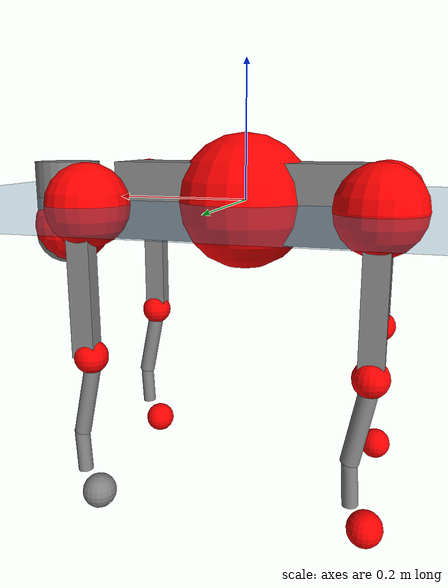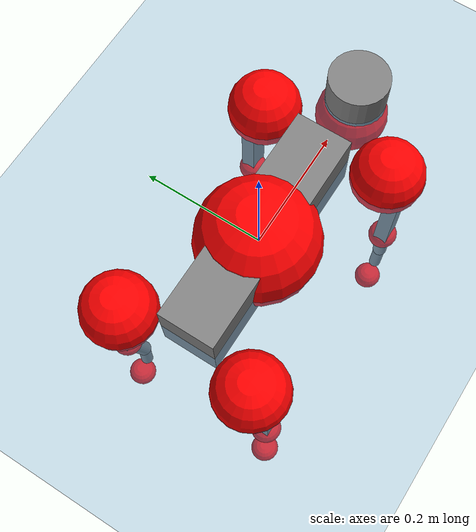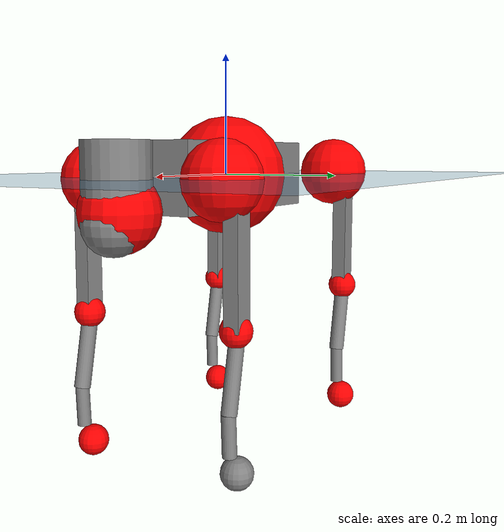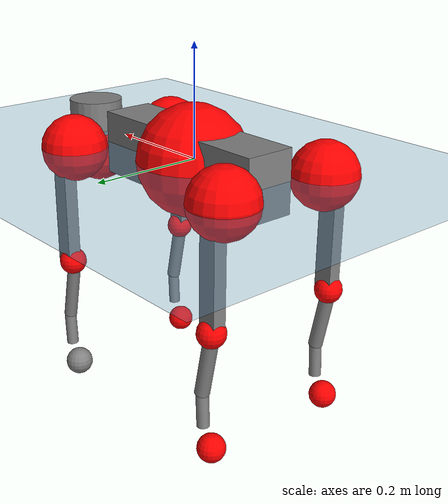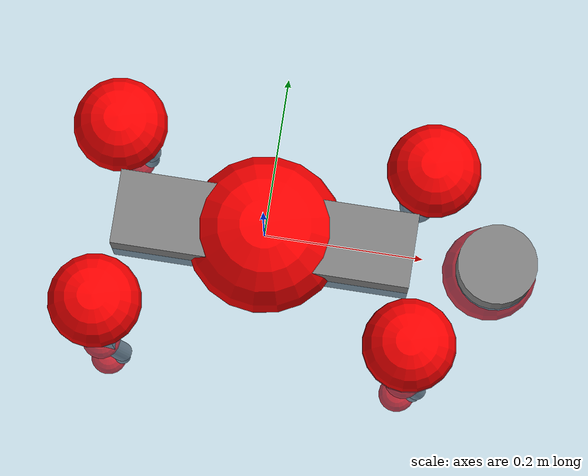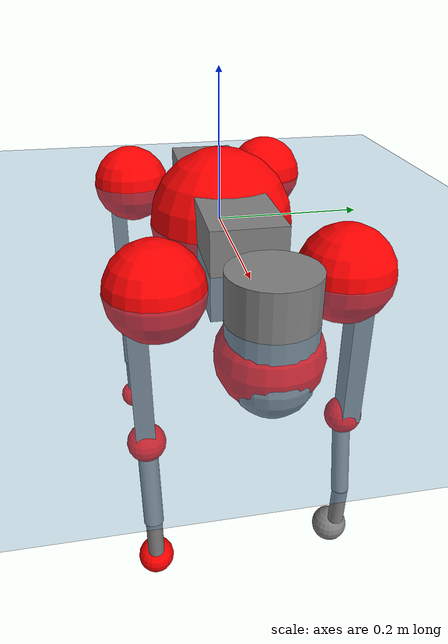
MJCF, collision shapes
<mujoco model="go2">
  <compiler angle="radian" assetdir="assets" balanceinertia="true" inertiafromgeom="false"/>

  <option timestep="0.005" density="1.2" viscosity="2e-05"/>

  <size nkey="1"/>

  <visual>
    <quality shadowsize="8192"/>
    <map shadowclip="0.5"/>
  </visual>

  <default>
    <default class="/">
      <geom contype="0" conaffinity="0" group="1" solref="-1000 -80"/>
      <site size="0.01 0.005 0.005" group="5"/>
      <general forcelimited="true" biastype="affine" gainprm="20" biasprm="0 -20 -0.5"/>
      <default class="go2">
        <joint armature="0.01" damping="0.01" frictionloss="0.2"/>
        <geom condim="1" margin="0.001"/>
        <default class="visual">
          <geom type="mesh" group="2"/>
        </default>
        <default class="collision">
          <geom group="3"/>
          <default class="foot">
            <geom size="0.022 0 0" condim="6" priority="1" friction="0.8 0.02 0.01" solimp="0.015 1 0.022"/>
          </default>
        </default>
        <default class="reward_collision_sphere">
          <geom group="5" rgba="1 0 0 1"/>
        </default>
      </default>
    </default>
  </default>

  <asset>
    <texture type="skybox" colorspace="auto" name="//unnamed_texture_0" builtin="gradient" rgb1="0.95 0.95 0.95" rgb2="0.95 0.95 0.95" width="100" height="600"/>
    <texture type="2d" colorspace="auto" name="texplane" builtin="checker" rgb1="0.345 0.575 0.748" rgb2="0.345 0.575 0.748" markrgb="1 1 1" width="512" height="512"/>
    <material name="MatPlane" class="/" texture="texplane" texuniform="true" texrepeat="2 2" specular="0.9"/>
    <material name="metal" class="/" rgba="0.9 0.95 0.95 1"/>
    <material name="black" class="/" rgba="0 0 0 1"/>
    <material name="white" class="/"/>
    <material name="gray" class="/" rgba="0.671705 0.692426 0.77427 1"/>
    <mesh name="base_0" class="/" file="base_0.obj"/>
    <mesh name="base_1" class="/" file="base_1.obj"/>
    <mesh name="base_2" class="/" file="base_2.obj"/>
    <mesh name="base_3" class="/" file="base_3.obj"/>
    <mesh name="base_4" class="/" file="base_4.obj"/>
    <mesh name="hip_0" class="/" file="hip_0.obj"/>
    <mesh name="hip_1" class="/" file="hip_1.obj"/>
    <mesh name="thigh_0" class="/" file="thigh_0.obj"/>
    <mesh name="thigh_1" class="/" file="thigh_1.obj"/>
    <mesh name="thigh_mirror_0" class="/" file="thigh_mirror_0.obj"/>
    <mesh name="thigh_mirror_1" class="/" file="thigh_mirror_1.obj"/>
    <mesh name="calf_0" class="/" file="calf_0.obj"/>
    <mesh name="calf_1" class="/" file="calf_1.obj"/>
    <mesh name="calf_mirror_0" class="/" file="calf_mirror_0.obj"/>
    <mesh name="calf_mirror_1" class="/" file="calf_mirror_1.obj"/>
    <mesh name="foot" class="/" file="foot.obj"/>
  </asset>

  <worldbody>
    <geom name="floor" class="/" size="100 100 0.125" type="plane" group="0" material="MatPlane"/>
    <light name="toplight_shadow" class="/" pos="0 0 5" dir="0.0990148 0.0990148 -0.990148" type="directional" ambient="0.04 0.04 0.04" diffuse="0.55 0.55 0.55" specular="0.12 0.12 0.12"/>
    <light name="toplight_fill" class="/" pos="0 0 5" dir="0.0990148 0.0990148 -0.990148" type="directional" castshadow="false" ambient="0.04 0.04 0.04" diffuse="0.3 0.3 0.3" specular="0.08 0.08 0.08"/>
    <body name="trunk" childclass="go2" pos="0.000245501 0.00201447 -0.00152734" quat="1 -2.68849e-05 9.73089e-05 -0.000234325">
      <inertial pos="0.0200749 0.00105139 -0.00457837" quat="0.000797439 0.717973 -0.00300645 0.696064" mass="7.00361" diaginertia="0.117699 0.0805368 0.0237473"/>
      <joint name="//unnamed_joint_0" type="free" armature="0" damping="0" frictionloss="0"/>
      <geom name="//unnamed_geom_1" class="visual" material="black" mesh="base_0"/>
      <geom name="//unnamed_geom_2" class="visual" material="black" mesh="base_1"/>
      <geom name="//unnamed_geom_3" class="visual" material="black" mesh="base_2"/>
      <geom name="//unnamed_geom_4" class="visual" material="white" mesh="base_3"/>
      <geom name="//unnamed_geom_5" class="visual" material="gray" mesh="base_4"/>
      <geom name="trunk_1" class="collision" size="0.187296 0.0465502 0.0567564" type="box"/>
      <geom name="trunk_2" class="collision" size="0.0497863 0.0448077" pos="0.291954 0 0.0100101" type="cylinder"/>
      <geom name="trunk_3" class="collision" size="0.0467991" pos="0.300149 0 -0.0600604"/>
      <geom name="//unnamed_geom_9" class="reward_collision_sphere" size="0.0995726"/>
      <geom name="//unnamed_geom_10" class="reward_collision_sphere" size="0.0597436" pos="0.286832 0 -0.0450453"/>
      <site name="imu" pos="-0.0203909 0.0236742 0.0305002" size="0.00995726"/>
      <camera name="track" pos="0 -1.92354 0" quat="0.707107 0.707107 0 0" mode="trackcom"/>
      <camera name="ego_camera" pos="0.319613 0 0.0450453" quat="-0.5 -0.5 0.5 0.5"/>
      <body name="FL_hip" pos="0.19789 0.0449482 -0.00131274" quat="0.999998 0.000613911 0.00180799 -0.000944406">
        <inertial pos="-0.00698954 0.0030368 -0.00275837" quat="0.497132 0.497767 0.505347 0.499712" mass="0.643049" diaginertia="0.000960322 0.000466704 0.00047184"/>
        <joint name="FL_hip_joint" pos="0 0 0" axis="0.999998 0.0016925 -0.000906291" range="-1.10486 1.06079" armature="0.00956808" damping="0.0257359" frictionloss="0.178209"/>
        <geom name="//unnamed_geom_11" class="visual" material="metal" mesh="hip_0"/>
        <geom name="//unnamed_geom_12" class="visual" material="gray" mesh="hip_1"/>
        <geom name="//unnamed_geom_13" class="collision" size="0.0458034 0.0199145" pos="0 0.0769417 0" quat="0.707107 0.707107 0 0" type="cylinder"/>
        <geom name="//unnamed_geom_14" class="reward_collision_sphere" size="0.0597436" pos="0 0.067324 0"/>
        <body name="FL_thigh" pos="0.000674951 0.0904714 -0.00153628" quat="1 -1.74906e-06 2.32518e-05 2.61075e-05">
          <inertial pos="-0.00348171 -0.0183588 -0.0279689" quat="0.835321 0.0905119 -0.0217169 0.541826" mass="1.11036" diaginertia="0.00693891 0.00475842 0.000914528"/>
          <joint name="FL_thigh_joint" pos="0 0 0" axis="0.0199392 0.999701 -0.0141816" stiffness="0.00770613" range="-1.58031 3.40369" armature="0.00933369" damping="0.0320215" frictionloss="0.200468"/>
          <geom name="//unnamed_geom_15" class="visual" material="metal" mesh="thigh_0"/>
          <geom name="//unnamed_geom_16" class="visual" material="gray" mesh="thigh_1"/>
          <geom name="//unnamed_geom_17" class="collision" size="0.106045 0.0121976 0.0169273" pos="0 0 -0.106607" quat="0.707107 0 0.707107 0" type="box"/>
          <body name="FL_calf" pos="-0.00494243 -0.00359827 -0.213482" quat="1 -0.000121339 -0.000191842 -2.77441e-05">
            <inertial pos="0.0037872 -0.00172309 -0.141352" quat="0.709901 0.000519416 -0.00347985 0.704293" mass="0.22808" diaginertia="0.00166957 0.00115831 5.28575e-05"/>
            <joint name="FL_calf_joint" pos="0 0 0" axis="0.00508552 0.999967 -0.00629536" stiffness="0.0261276" range="-2.7196 -0.793127" armature="0.0102413" damping="0.00229649" frictionloss="0.181479"/>
            <geom name="//unnamed_geom_18" class="visual" material="gray" mesh="calf_0"/>
            <geom name="//unnamed_geom_19" class="visual" material="black" mesh="calf_1"/>
            <geom name="FL_calf0" class="collision" size="0.0119487 0.0597436" pos="0.0081952 0 -0.0600604" quat="0.994493 0 -0.104807 0" type="cylinder"/>
            <geom name="//unnamed_geom_21" class="collision" size="0.010953 0.0323611" pos="0.020488 0 -0.148149" quat="0.999688 0 0.0249974 0" type="cylinder"/>
            <geom name="//unnamed_geom_22" class="visual" pos="0 0 -0.213215" quat="1 0 0 0" material="black" mesh="foot"/>
            <geom name="FL_foot" class="foot" size="0.0253629" pos="-0.0020488 0 -0.213215"/>
            <geom name="//unnamed_geom_24" class="reward_collision_sphere" size="0.0248931"/>
            <geom name="//unnamed_geom_25" class="reward_collision_sphere" size="0.0248931" pos="-0.0020488 0 -0.213215"/>
            <site name="FL_foot" class="foot" pos="-0.0020488 0 -0.213215" size="0.00995726"/>
          </body>
        </body>
      </body>
      <body name="FR_hip" pos="0.199571 -0.0431448 -0.00339385" quat="1 -6.6883e-05 8.98743e-05 1.68554e-06">
        <inertial pos="-0.00809409 -0.00190496 -0.000179665" quat="0.487874 0.504548 0.499308 0.508037" mass="0.644508" diaginertia="0.000937487 0.000481683 0.000475146"/>
        <joint name="FR_hip_joint" pos="0 0 0" axis="1 0.000604338 -0.000255289" stiffness="0.0134752" range="-1.05756 1.06591" armature="0.00992311" damping="0.00578669" frictionloss="0.223604"/>
        <geom name="//unnamed_geom_26" class="visual" pos="0 -3.41814e-10 -1.46611e-08" quat="4.63268e-05 1 0 0" material="metal" mesh="hip_0"/>
        <geom name="//unnamed_geom_27" class="visual" pos="0 -5.54122e-10 3.62625e-08" quat="4.63268e-05 1 0 0" material="gray" mesh="hip_1"/>
        <geom name="//unnamed_geom_28" class="collision" size="0.0458034 0.0199145" pos="0 -0.0769417 0" quat="0.707107 0.707107 0 0" type="cylinder"/>
        <geom name="//unnamed_geom_29" class="reward_collision_sphere" size="0.0597436" pos="0 -0.067324 0"/>
        <body name="FR_thigh" pos="0.00147238 -0.0919356 0.00140905" quat="0.999999 0.00104926 -0.000711119 0.000347375">
          <inertial pos="-0.00425738 0.0218834 -0.0291384" quat="0.532396 -0.0122298 0.0917901 0.841415" mass="1.12448" diaginertia="0.00632124 0.00460585 0.000846551"/>
          <joint name="FR_thigh_joint" pos="0 0 0" axis="-0.000733409 -0.999999 0.0012308" range="-3.42402 1.54851" armature="0.010497" damping="0.0167219" frictionloss="0.22458"/>
          <geom name="//unnamed_geom_30" class="visual" material="metal" mesh="thigh_mirror_0"/>
          <geom name="//unnamed_geom_31" class="visual" material="gray" mesh="thigh_mirror_1"/>
          <geom name="//unnamed_geom_32" class="collision" size="0.106045 0.0121976 0.0169273" pos="0 0 -0.106607" quat="0.707107 0 0.707107 0" type="box"/>
          <body name="FR_calf" pos="0.00122741 0.00108978 -0.213121" quat="1 -8.63553e-05 -0.000121929 3.72982e-05">
            <inertial pos="0.00889878 9.56197e-05 -0.146571" quat="0.699996 -0.00457492 0.00549331 0.714111" mass="0.256189" diaginertia="0.00183465 0.00120758 5.86996e-05"/>
            <joint name="FR_calf_joint" pos="0 0 0" axis="-0.0121654 -0.999906 0.0063746" range="0.826474 2.69127" armature="0.00958897" damping="0.0077326" frictionloss="0.201645"/>
            <geom name="//unnamed_geom_33" class="visual" material="gray" mesh="calf_mirror_0"/>
            <geom name="//unnamed_geom_34" class="visual" material="black" mesh="calf_mirror_1"/>
            <geom name="FR_calf0" class="collision" size="0.0129444 0.0597436" pos="0.010244 0 -0.0600604" quat="0.995004 0 -0.0998334 0" type="cylinder"/>
            <geom name="//unnamed_geom_36" class="collision" size="0.010953 0.0323611" pos="0.020488 0 -0.148149" quat="0.999688 0 0.0249974 0" type="cylinder"/>
            <geom name="//unnamed_geom_37" class="visual" pos="0 0 -0.213215" quat="1 0 0 0" material="black" mesh="foot"/>
            <geom name="FR_foot" class="foot" size="0.0194628" pos="-0.0020488 0 -0.213215"/>
            <geom name="//unnamed_geom_39" class="reward_collision_sphere" size="0.0248931"/>
            <geom name="//unnamed_geom_40" class="reward_collision_sphere" size="0.0248931" pos="-0.0020488 0 -0.213215"/>
            <site name="FR_foot" class="foot" pos="-0.0020488 0 -0.213215" size="0.00995726"/>
          </body>
        </body>
      </body>
      <body name="RL_hip" pos="-0.20099 0.0425685 0.0037528" quat="1 4.76934e-05 6.9817e-05 0.000196732">
        <inertial pos="0.00479189 0.000603144 0.00354182" quat="0.497926 0.497686 0.500411 0.503952" mass="0.631926" diaginertia="0.000950575 0.000478739 0.000478142"/>
        <joint name="RL_hip_joint" pos="0 0 0" axis="-0.99998 -0.00616075 0.00132697" stiffness="0.0132375" range="-1.1339 0.99471" armature="0.0101499" damping="0.00919448" frictionloss="0.172829"/>
        <geom name="//unnamed_geom_41" class="visual" pos="-2.03782e-10 0 -3.99459e-08" quat="4.63268e-05 0 1 0" material="metal" mesh="hip_0"/>
        <geom name="//unnamed_geom_42" class="visual" pos="-3.30355e-10 0 -3.54264e-08" quat="4.63268e-05 0 1 0" material="gray" mesh="hip_1"/>
        <geom name="//unnamed_geom_43" class="collision" size="0.0458034 0.0199145" pos="0 0.0769417 0" quat="0.707107 0.707107 0 0" type="cylinder"/>
        <geom name="//unnamed_geom_44" class="reward_collision_sphere" size="0.0597436" pos="0 0.067324 0"/>
        <body name="RL_thigh" pos="0.000113586 0.0879466 0.00163241" quat="1 -2.9745e-06 1.68624e-06 -4.42893e-06">
          <inertial pos="-0.00150832 -0.0196655 -0.0280959" quat="0.822607 0.0835078 -0.0206174 0.562067" mass="1.13287" diaginertia="0.00717398 0.00492051 0.000938226"/>
          <joint name="RL_thigh_joint" pos="0 0 0" axis="-0.00968272 0.999952 0.00174729" range="-0.470833 4.48953" armature="0.0111573" damping="0.00953668" frictionloss="0.205924"/>
          <geom name="//unnamed_geom_45" class="visual" material="metal" mesh="thigh_0"/>
          <geom name="//unnamed_geom_46" class="visual" material="gray" mesh="thigh_1"/>
          <geom name="//unnamed_geom_47" class="collision" size="0.106045 0.0121976 0.0169273" pos="0 0 -0.106607" quat="0.707107 0 0.707107 0" type="box"/>
          <body name="RL_calf" pos="-0.000184658 0.00150358 -0.212801" quat="1 -4.54197e-05 4.88719e-06 -3.6536e-05">
            <inertial pos="0.0074363 -0.00139925 -0.141347" quat="0.708907 -0.00198149 -0.000139853 0.705299" mass="0.23768" diaginertia="0.00167511 0.00122508 5.12746e-05"/>
            <joint name="RL_calf_joint" pos="0 0 0" axis="-0.000919147 0.999991 0.00409162" stiffness="0.0252207" range="-2.67471 -0.833616" armature="0.0106974" damping="0" frictionloss="0.208363"/>
            <geom name="//unnamed_geom_48" class="visual" material="gray" mesh="calf_0"/>
            <geom name="//unnamed_geom_49" class="visual" material="black" mesh="calf_1"/>
            <geom name="RL_calf0" class="collision" size="0.0129444 0.0597436" pos="0.010244 0 -0.0600604" quat="0.995004 0 -0.0998334 0" type="cylinder"/>
            <geom name="//unnamed_geom_51" class="collision" size="0.010953 0.0323611" pos="0.020488 0 -0.148149" quat="0.999688 0 0.0249974 0" type="cylinder"/>
            <geom name="//unnamed_geom_52" class="visual" pos="0 0 -0.213215" quat="1 0 0 0" material="black" mesh="foot"/>
            <geom name="RL_foot" class="foot" size="0.0229243" pos="-0.0020488 0 -0.213215"/>
            <geom name="//unnamed_geom_54" class="reward_collision_sphere" size="0.0248931"/>
            <geom name="//unnamed_geom_55" class="reward_collision_sphere" size="0.0248931" pos="-0.0020488 0 -0.213215"/>
            <site name="RL_foot" class="foot" pos="-0.0020488 0 -0.213215" size="0.00995726"/>
          </body>
        </body>
      </body>
      <body name="RR_hip" pos="-0.198286 -0.0474655 -0.00121087" quat="0.999999 0.000198355 -0.00122621 -0.000133621">
        <inertial pos="0.00531348 -0.00414581 0.000116368" quat="0.499549 0.497768 0.497804 0.504845" mass="0.721411" diaginertia="0.00101943 0.000500388 0.000510012"/>
        <joint name="RR_hip_joint" pos="0 0 0" axis="-0.999955 -0.00182642 0.00932972" range="-1.0026 1.07418" armature="0.00935296" damping="0.0248753" frictionloss="0.222727"/>
        <geom name="//unnamed_geom_56" class="visual" pos="2.01613e-10 -3.41814e-10 -2.52848e-08" quat="2.14617e-09 4.63268e-05 4.63268e-05 -1" material="metal" mesh="hip_0"/>
        <geom name="//unnamed_geom_57" class="visual" pos="3.35718e-10 -5.54122e-10 -7.16889e-08" quat="2.14617e-09 4.63268e-05 4.63268e-05 -1" material="gray" mesh="hip_1"/>
        <geom name="//unnamed_geom_58" class="collision" size="0.0458034 0.0199145" pos="0 -0.0769417 0" quat="0.707107 0.707107 0 0" type="cylinder"/>
        <geom name="//unnamed_geom_59" class="reward_collision_sphere" size="0.0597436" pos="0 -0.067324 0"/>
        <body name="RR_thigh" pos="0.00298734 -0.0929364 -0.00346865" quat="1 -6.47153e-05 -0.00051204 0.000394707">
          <inertial pos="-0.00433873 0.0211857 -0.0327847" quat="0.551648 -0.020281 0.0847202 0.829515" mass="1.17896" diaginertia="0.00699585 0.00481189 0.000884673"/>
          <joint name="RR_thigh_joint" pos="0 0 0" axis="-0.00277847 -0.999996 -0.00056868" range="-4.47162 0.47236" armature="0.00989372" damping="0.0187" frictionloss="0.21474"/>
          <geom name="//unnamed_geom_60" class="visual" material="metal" mesh="thigh_mirror_0"/>
          <geom name="//unnamed_geom_61" class="visual" material="gray" mesh="thigh_mirror_1"/>
          <geom name="//unnamed_geom_62" class="collision" size="0.106045 0.0121976 0.0169273" pos="0 0 -0.106607" quat="0.707107 0 0.707107 0" type="box"/>
          <body name="RR_calf" pos="-0.00355654 -0.00148435 -0.211956" quat="1 -0.000750856 0.000371675 0.000350755">
            <inertial pos="0.00878663 0.000266805 -0.141389" quat="0.702119 -0.0110975 0.00957159 0.711909" mass="0.239674" diaginertia="0.00162465 0.00118372 5.37653e-05"/>
            <joint name="RR_calf_joint" pos="0 0 0" axis="0.000870489 -0.99999 -0.00435551" stiffness="0.00496805" range="0.824562 2.74287" armature="0.00914654" damping="0.0336208" frictionloss="0.204742"/>
            <geom name="//unnamed_geom_63" class="visual" material="gray" mesh="calf_mirror_0"/>
            <geom name="//unnamed_geom_64" class="visual" material="black" mesh="calf_mirror_1"/>
            <geom name="RR_calf0" class="collision" size="0.0129444 0.0597436" pos="0.010244 0 -0.0600604" quat="0.995004 0 -0.0998334 0" type="cylinder"/>
            <geom name="//unnamed_geom_66" class="collision" size="0.010953 0.0323611" pos="0.020488 0 -0.148149" quat="0.999688 0 0.0249974 0" type="cylinder"/>
            <geom name="//unnamed_geom_67" class="visual" pos="0 0 -0.213215" quat="1 0 0 0" material="black" mesh="foot"/>
            <geom name="RR_foot" class="foot" size="0.0172986" pos="-0.0020488 0 -0.213215"/>
            <geom name="//unnamed_geom_69" class="reward_collision_sphere" size="0.0248931"/>
            <geom name="//unnamed_geom_70" class="reward_collision_sphere" size="0.0248931" pos="-0.0020488 0 -0.213215"/>
            <site name="RR_foot" class="foot" pos="-0.0020488 0 -0.213215" size="0.00995726"/>
          </body>
        </body>
      </body>
    </body>
  </worldbody>

  <contact>
    <pair class="/" geom1="floor" geom2="FL_foot" name="//unnamed_contact_0"/>
    <pair class="/" geom1="floor" geom2="FR_foot" name="//unnamed_contact_1"/>
    <pair class="/" geom1="floor" geom2="RL_foot" name="//unnamed_contact_2"/>
    <pair class="/" geom1="floor" geom2="RR_foot" name="//unnamed_contact_3"/>
  </contact>

  <actuator>
    <general name="FL_hip" class="/" joint="FL_hip_joint" forcerange="-25.498 25.498" gainprm="18.8663" biasprm="0 -18.8663 -0.472967"/>
    <general name="FL_thigh" class="/" joint="FL_thigh_joint" forcerange="-21.9187 21.9187" gainprm="18.8663" biasprm="0 -18.8663 -0.472967"/>
    <general name="FL_calf" class="/" joint="FL_calf_joint" forcerange="-49.937 49.937" gainprm="18.8663" biasprm="0 -18.8663 -0.472967"/>
    <general name="FR_hip" class="/" joint="FR_hip_joint" forcerange="-24.7509 24.7509" gainprm="18.8663" biasprm="0 -18.8663 -0.472967"/>
    <general name="FR_thigh" class="/" joint="FR_thigh_joint" forcerange="-24.2499 24.2499" gainprm="18.8663" biasprm="0 -18.8663 -0.472967"/>
    <general name="FR_calf" class="/" joint="FR_calf_joint" forcerange="-35.8729 35.8729" gainprm="18.8663" biasprm="0 -18.8663 -0.472967"/>
    <general name="RL_hip" class="/" joint="RL_hip_joint" forcerange="-20.8405 20.8405" gainprm="18.8663" biasprm="0 -18.8663 -0.472967"/>
    <general name="RL_thigh" class="/" joint="RL_thigh_joint" forcerange="-25.0796 25.0796" gainprm="18.8663" biasprm="0 -18.8663 -0.472967"/>
    <general name="RL_calf" class="/" joint="RL_calf_joint" forcerange="-45.8505 45.8505" gainprm="18.8663" biasprm="0 -18.8663 -0.472967"/>
    <general name="RR_hip" class="/" joint="RR_hip_joint" forcerange="-23.4609 23.4609" gainprm="18.8663" biasprm="0 -18.8663 -0.472967"/>
    <general name="RR_thigh" class="/" joint="RR_thigh_joint" forcerange="-27.5351 27.5351" gainprm="18.8663" biasprm="0 -18.8663 -0.472967"/>
    <general name="RR_calf" class="/" joint="RR_calf_joint" forcerange="-47.2876 47.2876" gainprm="18.8663" biasprm="0 -18.8663 -0.472967"/>
  </actuator>

  <sensor>
    <gyro site="imu" name="imu_angular_velocity"/>
    <velocimeter site="imu" name="imu_linear_velocity"/>
    <framelinvel objtype="site" objname="FL_foot" name="FL_foot_global_linear_velocity"/>
    <framelinvel objtype="site" objname="FR_foot" name="FR_foot_global_linear_velocity"/>
    <framelinvel objtype="site" objname="RL_foot" name="RL_foot_global_linear_velocity"/>
    <framelinvel objtype="site" objname="RR_foot" name="RR_foot_global_linear_velocity"/>
  </sensor>

  <keyframe>
    <key name="home" qpos="0 0 0.325 1 0 0 0 0.1 0.8 -1.5 -0.1 -0.8 1.5 -0.1 0.8 -1.5 0.1 -0.8 1.5"/>
  </keyframe>
</mujoco>
